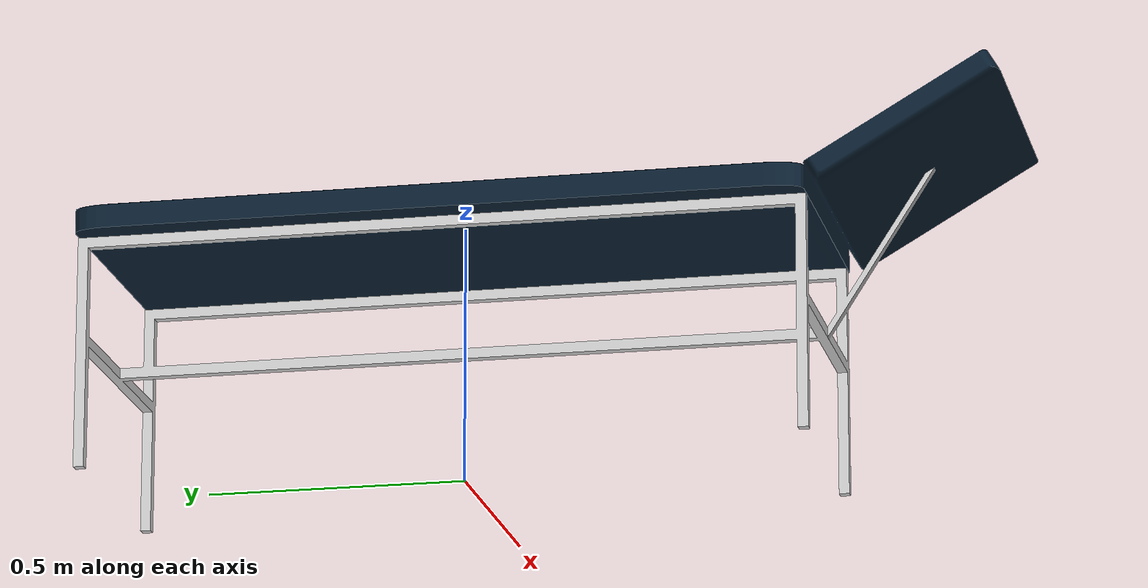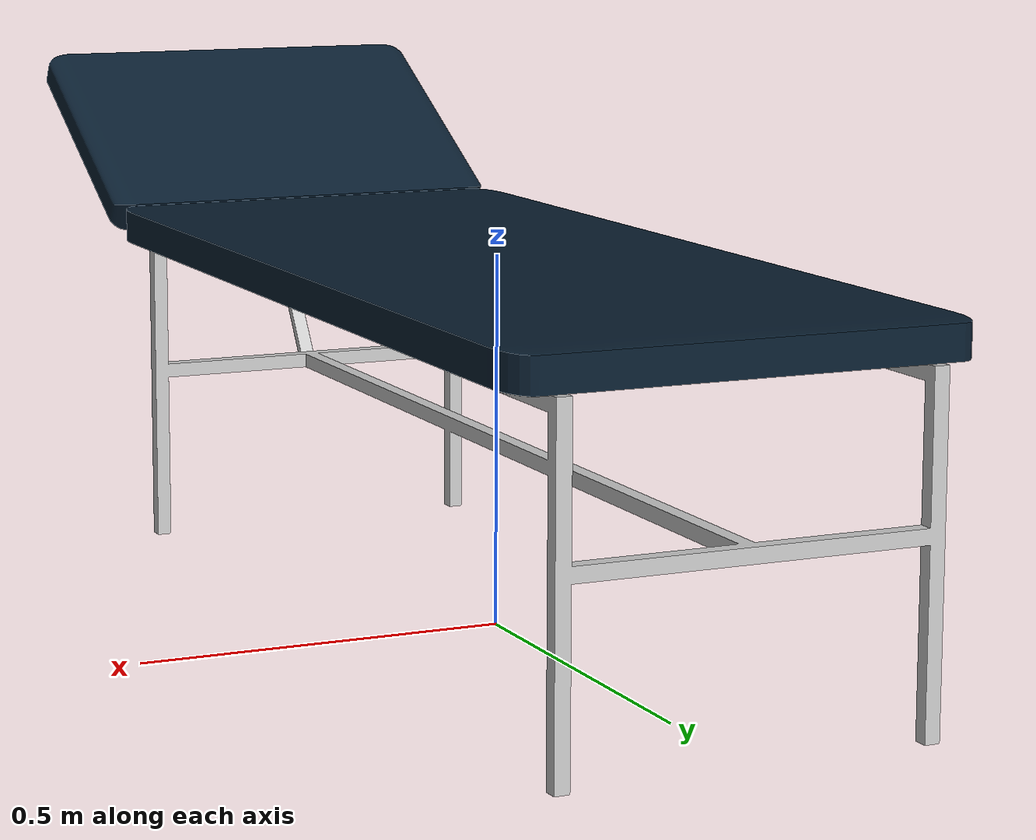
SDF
<?xml version="1.0" ?>
<sdf version="1.0">
  <model name="medical_couch">
    <static>true</static>
    <link name="medical_couch">
      <collision name="medical_couch">
        <pose>0 0 0 0 0 0</pose>
        <geometry>
          <mesh>
            <uri>model://medical_couch/meshes/model.dae</uri>
          </mesh>
        </geometry>
      </collision>

      <visual name="medical_couch_mesh">
	  <cast_shadows>true</cast_shadows>
        <geometry>
          <mesh>
	        <uri>model://medical_couch/meshes/model.dae</uri>
	      </mesh>
        </geometry>
      </visual>
    </link>
  </model>
</sdf>
